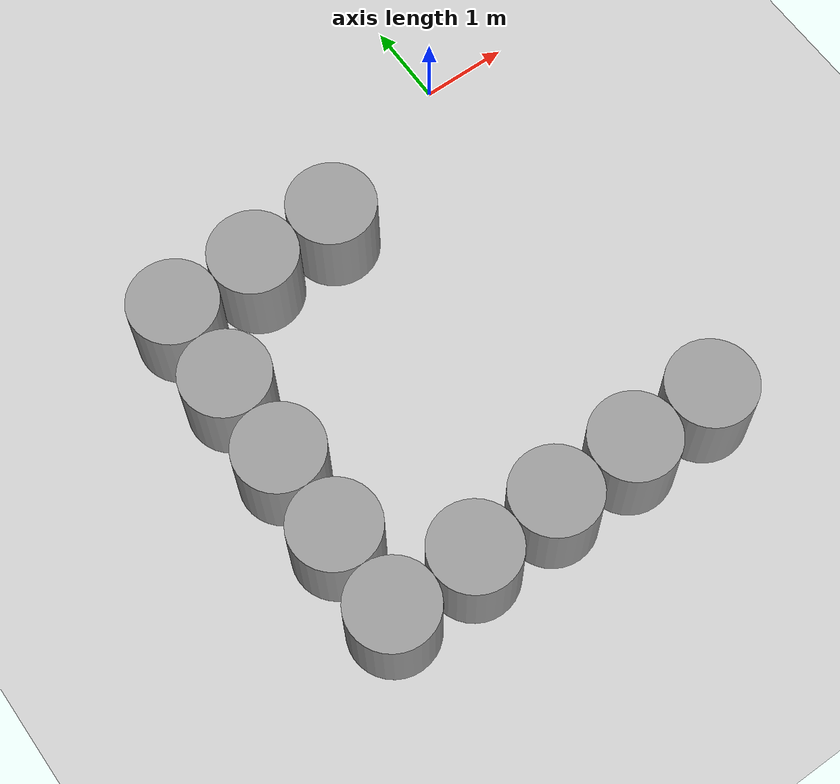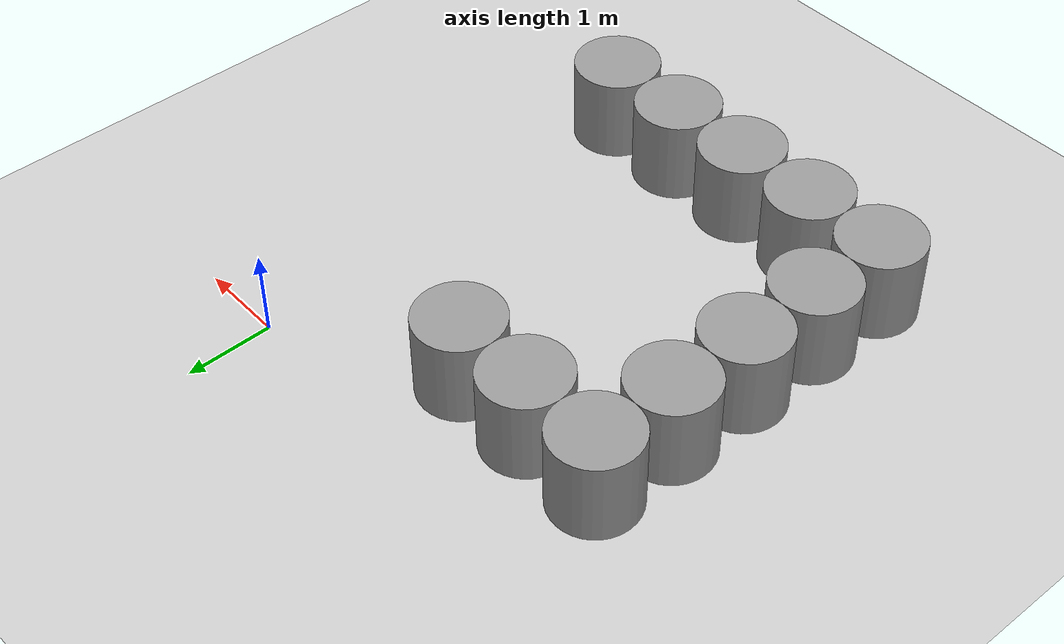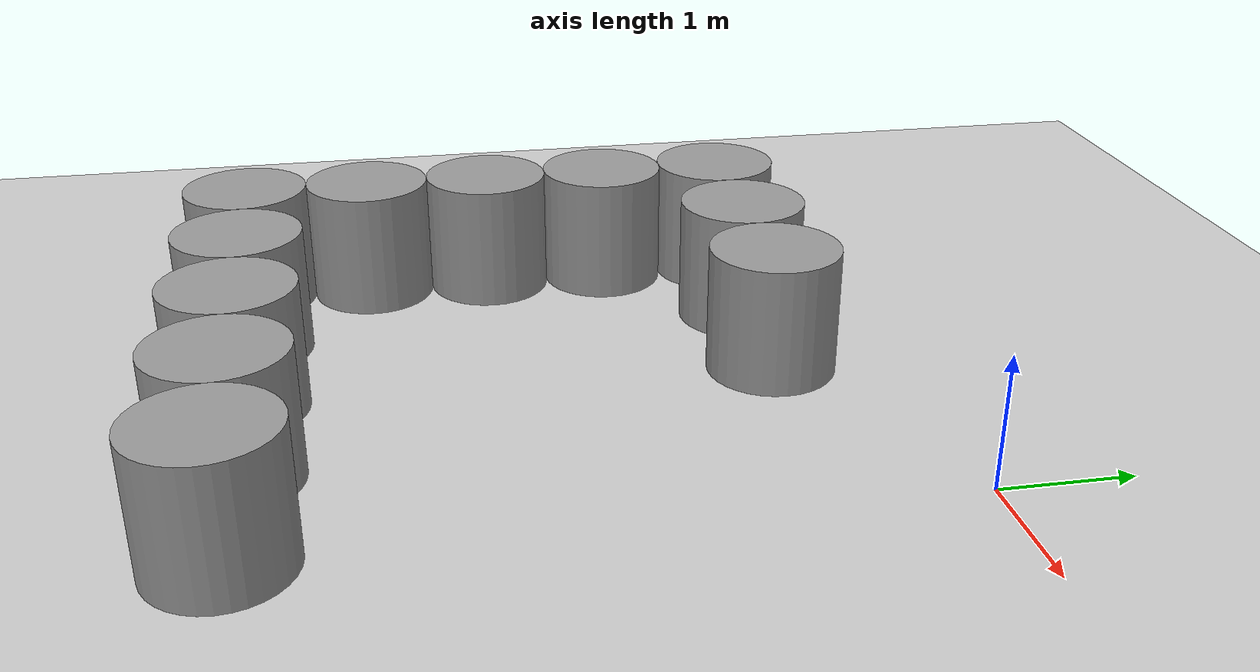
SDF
<sdf version="1.7">
 <world name="default">
  <model name="ground_plane">
   <static>1</static>
   <link name="link">
    <collision name="collision">
     <geometry><plane><normal>0 0 1</normal><size>100 100</size></plane></geometry>
     <surface>
      <contact><collide_bitmask>65535</collide_bitmask></contact>
      <friction><ode><mu>100</mu><mu2>50</mu2></ode></friction>
     </surface>
    </collision>
    <visual name="visual">
     <cast_shadows>0</cast_shadows>
     <geometry><plane><normal>0 0 1</normal><size>100 100</size></plane></geometry>
     <material>
      <script><uri>file://media/materials/scripts/gazebo.material</uri><name>Gazebo/Grey</name></script>
     </material>
    </visual>
   </link>
  </model>
  <model name="cylinder_1m_3">
   <model name="cylinder_1m">
    <link name="link_0">
     <inertial>
      <mass>1</mass>
      <inertia>
       <ixx>0.166667</ixx>
       <ixy>0</ixy>
       <ixz>0</ixz>
       <iyy>0.166667</iyy>
       <iyz>0</iyz>
       <izz>0.166667</izz>
      </inertia>
     </inertial>
     <pose>0 0 -0 1.5708 -0 0</pose>
     <visual name="visual">
      <geometry>
       <mesh>
        <uri>/home/leesirius/workbench_ws/src/tb3_custom_worlds/custom_models/cylinder_1m.obj</uri>
        <scale>1 1 1</scale>
       </mesh>
      </geometry>
      <material>
       <lighting>1</lighting>
       <script><uri>file://media/materials/scripts/gazebo.material</uri><name>Gazebo/Grey</name></script>
       <shader type="pixel"/>
      </material>
     </visual>
     <collision name="collision">
      <geometry>
       <mesh>
        <uri>/home/leesirius/workbench_ws/src/tb3_custom_worlds/custom_models/cylinder_1m.obj</uri>
        <scale>1 1 1</scale>
       </mesh>
      </geometry>
      <surface>
       <friction>
        <ode><mu>1</mu><mu2>1</mu2><fdir1>0 0 0</fdir1><slip1>0</slip1><slip2>0</slip2></ode>
        <torsional>
         <coefficient>1</coefficient>
         <patch_radius>0</patch_radius>
         <surface_radius>0</surface_radius>
         <use_patch_radius>1</use_patch_radius>
         <ode><slip>0</slip></ode>
        </torsional>
       </friction>
       <bounce><restitution_coefficient>0</restitution_coefficient><threshold>1e+06</threshold></bounce>
       <contact>
        <collide_without_contact>0</collide_without_contact>
        <collide_without_contact_bitmask>1</collide_without_contact_bitmask>
        <collide_bitmask>1</collide_bitmask>
        <ode>
         <soft_cfm>0</soft_cfm>
         <soft_erp>0.2</soft_erp>
         <kp>1e+13</kp>
         <kd>1</kd>
         <max_vel>0.01</max_vel>
         <min_depth>0</min_depth>
        </ode>
        <bullet>
         <split_impulse>1</split_impulse>
         <split_impulse_penetration_threshold>-0.01</split_impulse_penetration_threshold>
         <soft_cfm>0</soft_cfm>
         <soft_erp>0.2</soft_erp>
         <kp>1e+13</kp>
         <kd>1</kd>
        </bullet>
       </contact>
      </surface>
     </collision>
    </link>
    <static>0</static>
    <pose>0 0 4e-06 0 -0 0</pose>
   </model>
   <static>1</static>
   <pose>-3.99995 -1.00002 0.499996 -4e-06 -0 0.00014</pose>
  </model>
  <model name="cylinder_1m_4">
   <model name="cylinder_1m">
    <link name="link_0">
     <inertial>
      <mass>1</mass>
      <inertia>
       <ixx>0.166667</ixx>
       <ixy>0</ixy>
       <ixz>0</ixz>
       <iyy>0.166667</iyy>
       <iyz>0</iyz>
       <izz>0.166667</izz>
      </inertia>
     </inertial>
     <pose>0 0 -0 1.5708 -0 0</pose>
     <visual name="visual">
      <geometry>
       <mesh>
        <uri>/home/leesirius/workbench_ws/src/tb3_custom_worlds/custom_models/cylinder_1m.obj</uri>
        <scale>1 1 1</scale>
       </mesh>
      </geometry>
      <material>
       <lighting>1</lighting>
       <script><uri>file://media/materials/scripts/gazebo.material</uri><name>Gazebo/Grey</name></script>
       <shader type="pixel"/>
      </material>
     </visual>
     <collision name="collision">
      <geometry>
       <mesh>
        <uri>/home/leesirius/workbench_ws/src/tb3_custom_worlds/custom_models/cylinder_1m.obj</uri>
        <scale>1 1 1</scale>
       </mesh>
      </geometry>
      <surface>
       <friction>
        <ode><mu>1</mu><mu2>1</mu2><fdir1>0 0 0</fdir1><slip1>0</slip1><slip2>0</slip2></ode>
        <torsional>
         <coefficient>1</coefficient>
         <patch_radius>0</patch_radius>
         <surface_radius>0</surface_radius>
         <use_patch_radius>1</use_patch_radius>
         <ode><slip>0</slip></ode>
        </torsional>
       </friction>
       <bounce><restitution_coefficient>0</restitution_coefficient><threshold>1e+06</threshold></bounce>
       <contact>
        <collide_without_contact>0</collide_without_contact>
        <collide_without_contact_bitmask>1</collide_without_contact_bitmask>
        <collide_bitmask>1</collide_bitmask>
        <ode>
         <soft_cfm>0</soft_cfm>
         <soft_erp>0.2</soft_erp>
         <kp>1e+13</kp>
         <kd>1</kd>
         <max_vel>0.01</max_vel>
         <min_depth>0</min_depth>
        </ode>
        <bullet>
         <split_impulse>1</split_impulse>
         <split_impulse_penetration_threshold>-0.01</split_impulse_penetration_threshold>
         <soft_cfm>0</soft_cfm>
         <soft_erp>0.2</soft_erp>
         <kp>1e+13</kp>
         <kd>1</kd>
        </bullet>
       </contact>
      </surface>
     </collision>
    </link>
    <static>0</static>
    <pose>0 0 4e-06 0 -0 0</pose>
   </model>
   <static>1</static>
   <pose>-3.99995 -2.00002 0.499996 -4e-06 -0 0.00014</pose>
  </model>
  <model name="cylinder_1m_5">
   <model name="cylinder_1m">
    <link name="link_0">
     <inertial>
      <mass>1</mass>
      <inertia>
       <ixx>0.166667</ixx>
       <ixy>0</ixy>
       <ixz>0</ixz>
       <iyy>0.166667</iyy>
       <iyz>0</iyz>
       <izz>0.166667</izz>
      </inertia>
     </inertial>
     <pose>0 0 -0 1.5708 -0 0</pose>
     <visual name="visual">
      <geometry>
       <mesh>
        <uri>/home/leesirius/workbench_ws/src/tb3_custom_worlds/custom_models/cylinder_1m.obj</uri>
        <scale>1 1 1</scale>
       </mesh>
      </geometry>
      <material>
       <lighting>1</lighting>
       <script><uri>file://media/materials/scripts/gazebo.material</uri><name>Gazebo/Grey</name></script>
       <shader type="pixel"/>
      </material>
     </visual>
     <collision name="collision">
      <geometry>
       <mesh>
        <uri>/home/leesirius/workbench_ws/src/tb3_custom_worlds/custom_models/cylinder_1m.obj</uri>
        <scale>1 1 1</scale>
       </mesh>
      </geometry>
      <surface>
       <friction>
        <ode><mu>1</mu><mu2>1</mu2><fdir1>0 0 0</fdir1><slip1>0</slip1><slip2>0</slip2></ode>
        <torsional>
         <coefficient>1</coefficient>
         <patch_radius>0</patch_radius>
         <surface_radius>0</surface_radius>
         <use_patch_radius>1</use_patch_radius>
         <ode><slip>0</slip></ode>
        </torsional>
       </friction>
       <bounce><restitution_coefficient>0</restitution_coefficient><threshold>1e+06</threshold></bounce>
       <contact>
        <collide_without_contact>0</collide_without_contact>
        <collide_without_contact_bitmask>1</collide_without_contact_bitmask>
        <collide_bitmask>1</collide_bitmask>
        <ode>
         <soft_cfm>0</soft_cfm>
         <soft_erp>0.2</soft_erp>
         <kp>1e+13</kp>
         <kd>1</kd>
         <max_vel>0.01</max_vel>
         <min_depth>0</min_depth>
        </ode>
        <bullet>
         <split_impulse>1</split_impulse>
         <split_impulse_penetration_threshold>-0.01</split_impulse_penetration_threshold>
         <soft_cfm>0</soft_cfm>
         <soft_erp>0.2</soft_erp>
         <kp>1e+13</kp>
         <kd>1</kd>
        </bullet>
       </contact>
      </surface>
     </collision>
    </link>
    <static>0</static>
    <pose>0 0 4e-06 0 -0 0</pose>
   </model>
   <static>1</static>
   <pose>-3.99995 -3.00002 0.499996 -4e-06 -0 0.00014</pose>
  </model>
  <model name="cylinder_1m_6">
   <model name="cylinder_1m">
    <link name="link_0">
     <inertial>
      <mass>1</mass>
      <inertia>
       <ixx>0.166667</ixx>
       <ixy>0</ixy>
       <ixz>0</ixz>
       <iyy>0.166667</iyy>
       <iyz>0</iyz>
       <izz>0.166667</izz>
      </inertia>
     </inertial>
     <pose>0 0 -0 1.5708 -0 0</pose>
     <visual name="visual">
      <geometry>
       <mesh>
        <uri>/home/leesirius/workbench_ws/src/tb3_custom_worlds/custom_models/cylinder_1m.obj</uri>
        <scale>1 1 1</scale>
       </mesh>
      </geometry>
      <material>
       <lighting>1</lighting>
       <script><uri>file://media/materials/scripts/gazebo.material</uri><name>Gazebo/Grey</name></script>
       <shader type="pixel"/>
      </material>
     </visual>
     <collision name="collision">
      <geometry>
       <mesh>
        <uri>/home/leesirius/workbench_ws/src/tb3_custom_worlds/custom_models/cylinder_1m.obj</uri>
        <scale>1 1 1</scale>
       </mesh>
      </geometry>
      <surface>
       <friction>
        <ode><mu>1</mu><mu2>1</mu2><fdir1>0 0 0</fdir1><slip1>0</slip1><slip2>0</slip2></ode>
        <torsional>
         <coefficient>1</coefficient>
         <patch_radius>0</patch_radius>
         <surface_radius>0</surface_radius>
         <use_patch_radius>1</use_patch_radius>
         <ode><slip>0</slip></ode>
        </torsional>
       </friction>
       <bounce><restitution_coefficient>0</restitution_coefficient><threshold>1e+06</threshold></bounce>
       <contact>
        <collide_without_contact>0</collide_without_contact>
        <collide_without_contact_bitmask>1</collide_without_contact_bitmask>
        <collide_bitmask>1</collide_bitmask>
        <ode>
         <soft_cfm>0</soft_cfm>
         <soft_erp>0.2</soft_erp>
         <kp>1e+13</kp>
         <kd>1</kd>
         <max_vel>0.01</max_vel>
         <min_depth>0</min_depth>
        </ode>
        <bullet>
         <split_impulse>1</split_impulse>
         <split_impulse_penetration_threshold>-0.01</split_impulse_penetration_threshold>
         <soft_cfm>0</soft_cfm>
         <soft_erp>0.2</soft_erp>
         <kp>1e+13</kp>
         <kd>1</kd>
        </bullet>
       </contact>
      </surface>
     </collision>
    </link>
    <static>0</static>
    <pose>0 0 4e-06 0 -0 0</pose>
   </model>
   <static>1</static>
   <pose>-3.99995 -4.00002 0.499996 -4e-06 -0 0.00014</pose>
  </model>
  <model name="cylinder_1m_7">
   <model name="cylinder_1m">
    <link name="link_0">
     <inertial>
      <mass>1</mass>
      <inertia>
       <ixx>0.166667</ixx>
       <ixy>0</ixy>
       <ixz>0</ixz>
       <iyy>0.166667</iyy>
       <iyz>0</iyz>
       <izz>0.166667</izz>
      </inertia>
     </inertial>
     <pose>0 0 -0 1.5708 -0 0</pose>
     <visual name="visual">
      <geometry>
       <mesh>
        <uri>/home/leesirius/workbench_ws/src/tb3_custom_worlds/custom_models/cylinder_1m.obj</uri>
        <scale>1 1 1</scale>
       </mesh>
      </geometry>
      <material>
       <lighting>1</lighting>
       <script><uri>file://media/materials/scripts/gazebo.material</uri><name>Gazebo/Grey</name></script>
       <shader type="pixel"/>
      </material>
     </visual>
     <collision name="collision">
      <geometry>
       <mesh>
        <uri>/home/leesirius/workbench_ws/src/tb3_custom_worlds/custom_models/cylinder_1m.obj</uri>
        <scale>1 1 1</scale>
       </mesh>
      </geometry>
      <surface>
       <friction>
        <ode><mu>1</mu><mu2>1</mu2><fdir1>0 0 0</fdir1><slip1>0</slip1><slip2>0</slip2></ode>
        <torsional>
         <coefficient>1</coefficient>
         <patch_radius>0</patch_radius>
         <surface_radius>0</surface_radius>
         <use_patch_radius>1</use_patch_radius>
         <ode><slip>0</slip></ode>
        </torsional>
       </friction>
       <bounce><restitution_coefficient>0</restitution_coefficient><threshold>1e+06</threshold></bounce>
       <contact>
        <collide_without_contact>0</collide_without_contact>
        <collide_without_contact_bitmask>1</collide_without_contact_bitmask>
        <collide_bitmask>1</collide_bitmask>
        <ode>
         <soft_cfm>0</soft_cfm>
         <soft_erp>0.2</soft_erp>
         <kp>1e+13</kp>
         <kd>1</kd>
         <max_vel>0.01</max_vel>
         <min_depth>0</min_depth>
        </ode>
        <bullet>
         <split_impulse>1</split_impulse>
         <split_impulse_penetration_threshold>-0.01</split_impulse_penetration_threshold>
         <soft_cfm>0</soft_cfm>
         <soft_erp>0.2</soft_erp>
         <kp>1e+13</kp>
         <kd>1</kd>
        </bullet>
       </contact>
      </surface>
     </collision>
    </link>
    <static>0</static>
    <pose>0 0 4e-06 0 -0 0</pose>
   </model>
   <static>1</static>
   <pose>-3.99995 -5.00002 0.499996 -4e-06 -0 0.00014</pose>
  </model>
  <model name="cylinder_1m_2_clone_10">
   <model name="cylinder_1m">
    <link name="link_0">
     <inertial>
      <mass>1</mass>
      <inertia>
       <ixx>0.166667</ixx>
       <ixy>0</ixy>
       <ixz>0</ixz>
       <iyy>0.166667</iyy>
       <iyz>0</iyz>
       <izz>0.166667</izz>
      </inertia>
     </inertial>
     <pose>0 0 -0 1.5708 -0 0</pose>
     <visual name="visual">
      <geometry>
       <mesh>
        <uri>/home/leesirius/workbench_ws/src/tb3_custom_worlds/custom_models/cylinder_1m.obj</uri>
        <scale>1 1 1</scale>
       </mesh>
      </geometry>
      <material>
       <lighting>1</lighting>
       <script><uri>file://media/materials/scripts/gazebo.material</uri><name>Gazebo/Grey</name></script>
       <shader type="pixel"/>
      </material>
     </visual>
     <collision name="collision">
      <geometry>
       <mesh>
        <uri>/home/leesirius/workbench_ws/src/tb3_custom_worlds/custom_models/cylinder_1m.obj</uri>
        <scale>1 1 1</scale>
       </mesh>
      </geometry>
      <surface>
       <friction>
        <ode><mu>1</mu><mu2>1</mu2><fdir1>0 0 0</fdir1><slip1>0</slip1><slip2>0</slip2></ode>
        <torsional>
         <coefficient>1</coefficient>
         <patch_radius>0</patch_radius>
         <surface_radius>0</surface_radius>
         <use_patch_radius>1</use_patch_radius>
         <ode><slip>0</slip></ode>
        </torsional>
       </friction>
       <bounce><restitution_coefficient>0</restitution_coefficient><threshold>1e+06</threshold></bounce>
       <contact>
        <collide_without_contact>0</collide_without_contact>
        <collide_without_contact_bitmask>1</collide_without_contact_bitmask>
        <collide_bitmask>1</collide_bitmask>
        <ode>
         <soft_cfm>0</soft_cfm>
         <soft_erp>0.2</soft_erp>
         <kp>1e+13</kp>
         <kd>1</kd>
         <max_vel>0.01</max_vel>
         <min_depth>0</min_depth>
        </ode>
        <bullet>
         <split_impulse>1</split_impulse>
         <split_impulse_penetration_threshold>-0.01</split_impulse_penetration_threshold>
         <soft_cfm>0</soft_cfm>
         <soft_erp>0.2</soft_erp>
         <kp>1e+13</kp>
         <kd>1</kd>
        </bullet>
       </contact>
      </surface>
     </collision>
    </link>
    <static>0</static>
    <pose>0 0 4e-06 0 -0 0</pose>
   </model>
   <static>1</static>
   <pose>-2.99996 -5.00002 0.499995 -1e-06 -1e-06 0.000171</pose>
  </model>
  <model name="cylinder_1m_2_clone_11">
   <model name="cylinder_1m">
    <link name="link_0">
     <inertial>
      <mass>1</mass>
      <inertia>
       <ixx>0.166667</ixx>
       <ixy>0</ixy>
       <ixz>0</ixz>
       <iyy>0.166667</iyy>
       <iyz>0</iyz>
       <izz>0.166667</izz>
      </inertia>
     </inertial>
     <pose>0 0 -0 1.5708 -0 0</pose>
     <visual name="visual">
      <geometry>
       <mesh>
        <uri>/home/leesirius/workbench_ws/src/tb3_custom_worlds/custom_models/cylinder_1m.obj</uri>
        <scale>1 1 1</scale>
       </mesh>
      </geometry>
      <material>
       <lighting>1</lighting>
       <script><uri>file://media/materials/scripts/gazebo.material</uri><name>Gazebo/Grey</name></script>
       <shader type="pixel"/>
      </material>
     </visual>
     <collision name="collision">
      <geometry>
       <mesh>
        <uri>/home/leesirius/workbench_ws/src/tb3_custom_worlds/custom_models/cylinder_1m.obj</uri>
        <scale>1 1 1</scale>
       </mesh>
      </geometry>
      <surface>
       <friction>
        <ode><mu>1</mu><mu2>1</mu2><fdir1>0 0 0</fdir1><slip1>0</slip1><slip2>0</slip2></ode>
        <torsional>
         <coefficient>1</coefficient>
         <patch_radius>0</patch_radius>
         <surface_radius>0</surface_radius>
         <use_patch_radius>1</use_patch_radius>
         <ode><slip>0</slip></ode>
        </torsional>
       </friction>
       <bounce><restitution_coefficient>0</restitution_coefficient><threshold>1e+06</threshold></bounce>
       <contact>
        <collide_without_contact>0</collide_without_contact>
        <collide_without_contact_bitmask>1</collide_without_contact_bitmask>
        <collide_bitmask>1</collide_bitmask>
        <ode>
         <soft_cfm>0</soft_cfm>
         <soft_erp>0.2</soft_erp>
         <kp>1e+13</kp>
         <kd>1</kd>
         <max_vel>0.01</max_vel>
         <min_depth>0</min_depth>
        </ode>
        <bullet>
         <split_impulse>1</split_impulse>
         <split_impulse_penetration_threshold>-0.01</split_impulse_penetration_threshold>
         <soft_cfm>0</soft_cfm>
         <soft_erp>0.2</soft_erp>
         <kp>1e+13</kp>
         <kd>1</kd>
        </bullet>
       </contact>
      </surface>
     </collision>
    </link>
    <static>0</static>
    <pose>0 0 4e-06 0 -0 0</pose>
   </model>
   <static>1</static>
   <pose>-1.99996 -5.00002 0.499995 -1e-06 -1e-06 0.000171</pose>
  </model>
  <model name="cylinder_1m_2_clone_12">
   <model name="cylinder_1m">
    <link name="link_0">
     <inertial>
      <mass>1</mass>
      <inertia>
       <ixx>0.166667</ixx>
       <ixy>0</ixy>
       <ixz>0</ixz>
       <iyy>0.166667</iyy>
       <iyz>0</iyz>
       <izz>0.166667</izz>
      </inertia>
     </inertial>
     <pose>0 0 -0 1.5708 -0 0</pose>
     <visual name="visual">
      <geometry>
       <mesh>
        <uri>/home/leesirius/workbench_ws/src/tb3_custom_worlds/custom_models/cylinder_1m.obj</uri>
        <scale>1 1 1</scale>
       </mesh>
      </geometry>
      <material>
       <lighting>1</lighting>
       <script><uri>file://media/materials/scripts/gazebo.material</uri><name>Gazebo/Grey</name></script>
       <shader type="pixel"/>
      </material>
     </visual>
     <collision name="collision">
      <geometry>
       <mesh>
        <uri>/home/leesirius/workbench_ws/src/tb3_custom_worlds/custom_models/cylinder_1m.obj</uri>
        <scale>1 1 1</scale>
       </mesh>
      </geometry>
      <surface>
       <friction>
        <ode><mu>1</mu><mu2>1</mu2><fdir1>0 0 0</fdir1><slip1>0</slip1><slip2>0</slip2></ode>
        <torsional>
         <coefficient>1</coefficient>
         <patch_radius>0</patch_radius>
         <surface_radius>0</surface_radius>
         <use_patch_radius>1</use_patch_radius>
         <ode><slip>0</slip></ode>
        </torsional>
       </friction>
       <bounce><restitution_coefficient>0</restitution_coefficient><threshold>1e+06</threshold></bounce>
       <contact>
        <collide_without_contact>0</collide_without_contact>
        <collide_without_contact_bitmask>1</collide_without_contact_bitmask>
        <collide_bitmask>1</collide_bitmask>
        <ode>
         <soft_cfm>0</soft_cfm>
         <soft_erp>0.2</soft_erp>
         <kp>1e+13</kp>
         <kd>1</kd>
         <max_vel>0.01</max_vel>
         <min_depth>0</min_depth>
        </ode>
        <bullet>
         <split_impulse>1</split_impulse>
         <split_impulse_penetration_threshold>-0.01</split_impulse_penetration_threshold>
         <soft_cfm>0</soft_cfm>
         <soft_erp>0.2</soft_erp>
         <kp>1e+13</kp>
         <kd>1</kd>
        </bullet>
       </contact>
      </surface>
     </collision>
    </link>
    <static>0</static>
    <pose>0 0 4e-06 0 -0 0</pose>
   </model>
   <static>1</static>
   <pose>-0.999953 -5.00002 0.499995 -1e-06 -1e-06 0.000171</pose>
  </model>
  <model name="cylinder_1m_2_clone_13">
   <model name="cylinder_1m">
    <link name="link_0">
     <inertial>
      <mass>1</mass>
      <inertia>
       <ixx>0.166667</ixx>
       <ixy>0</ixy>
       <ixz>0</ixz>
       <iyy>0.166667</iyy>
       <iyz>0</iyz>
       <izz>0.166667</izz>
      </inertia>
     </inertial>
     <pose>0 0 -0 1.5708 -0 0</pose>
     <visual name="visual">
      <geometry>
       <mesh>
        <uri>/home/leesirius/workbench_ws/src/tb3_custom_worlds/custom_models/cylinder_1m.obj</uri>
        <scale>1 1 1</scale>
       </mesh>
      </geometry>
      <material>
       <lighting>1</lighting>
       <script><uri>file://media/materials/scripts/gazebo.material</uri><name>Gazebo/Grey</name></script>
       <shader type="pixel"/>
      </material>
     </visual>
     <collision name="collision">
      <geometry>
       <mesh>
        <uri>/home/leesirius/workbench_ws/src/tb3_custom_worlds/custom_models/cylinder_1m.obj</uri>
        <scale>1 1 1</scale>
       </mesh>
      </geometry>
      <surface>
       <friction>
        <ode><mu>1</mu><mu2>1</mu2><fdir1>0 0 0</fdir1><slip1>0</slip1><slip2>0</slip2></ode>
        <torsional>
         <coefficient>1</coefficient>
         <patch_radius>0</patch_radius>
         <surface_radius>0</surface_radius>
         <use_patch_radius>1</use_patch_radius>
         <ode><slip>0</slip></ode>
        </torsional>
       </friction>
       <bounce><restitution_coefficient>0</restitution_coefficient><threshold>1e+06</threshold></bounce>
       <contact>
        <collide_without_contact>0</collide_without_contact>
        <collide_without_contact_bitmask>1</collide_without_contact_bitmask>
        <collide_bitmask>1</collide_bitmask>
        <ode>
         <soft_cfm>0</soft_cfm>
         <soft_erp>0.2</soft_erp>
         <kp>1e+13</kp>
         <kd>1</kd>
         <max_vel>0.01</max_vel>
         <min_depth>0</min_depth>
        </ode>
        <bullet>
         <split_impulse>1</split_impulse>
         <split_impulse_penetration_threshold>-0.01</split_impulse_penetration_threshold>
         <soft_cfm>0</soft_cfm>
         <soft_erp>0.2</soft_erp>
         <kp>1e+13</kp>
         <kd>1</kd>
        </bullet>
       </contact>
      </surface>
     </collision>
    </link>
    <static>0</static>
    <pose>0 0 4e-06 0 -0 0</pose>
   </model>
   <static>1</static>
   <pose>3.9e-05 -5.00001 0.499995 -4e-06 -3e-06 0.00016</pose>
  </model>
  <model name="cylinder_1m_2_clone_46_clone_1">
   <model name="cylinder_1m">
    <link name="link_0">
     <inertial>
      <mass>1</mass>
      <inertia>
       <ixx>0.166667</ixx>
       <ixy>0</ixy>
       <ixz>0</ixz>
       <iyy>0.166667</iyy>
       <iyz>0</iyz>
       <izz>0.166667</izz>
      </inertia>
     </inertial>
     <pose>0 0 -0 1.5708 -0 0</pose>
     <visual name="visual">
      <geometry>
       <mesh>
        <uri>/home/leesirius/workbench_ws/src/tb3_custom_worlds/custom_models/cylinder_1m.obj</uri>
        <scale>1 1 1</scale>
       </mesh>
      </geometry>
      <material>
       <lighting>1</lighting>
       <script><uri>file://media/materials/scripts/gazebo.material</uri><name>Gazebo/Grey</name></script>
       <shader type="pixel"/>
      </material>
     </visual>
     <collision name="collision">
      <geometry>
       <mesh>
        <uri>/home/leesirius/workbench_ws/src/tb3_custom_worlds/custom_models/cylinder_1m.obj</uri>
        <scale>1 1 1</scale>
       </mesh>
      </geometry>
      <surface>
       <friction>
        <ode><mu>1</mu><mu2>1</mu2><fdir1>0 0 0</fdir1><slip1>0</slip1><slip2>0</slip2></ode>
        <torsional>
         <coefficient>1</coefficient>
         <patch_radius>0</patch_radius>
         <surface_radius>0</surface_radius>
         <use_patch_radius>1</use_patch_radius>
         <ode><slip>0</slip></ode>
        </torsional>
       </friction>
       <bounce><restitution_coefficient>0</restitution_coefficient><threshold>1e+06</threshold></bounce>
       <contact>
        <collide_without_contact>0</collide_without_contact>
        <collide_without_contact_bitmask>1</collide_without_contact_bitmask>
        <collide_bitmask>1</collide_bitmask>
        <ode>
         <soft_cfm>0</soft_cfm>
         <soft_erp>0.2</soft_erp>
         <kp>1e+13</kp>
         <kd>1</kd>
         <max_vel>0.01</max_vel>
         <min_depth>0</min_depth>
        </ode>
        <bullet>
         <split_impulse>1</split_impulse>
         <split_impulse_penetration_threshold>-0.01</split_impulse_penetration_threshold>
         <soft_cfm>0</soft_cfm>
         <soft_erp>0.2</soft_erp>
         <kp>1e+13</kp>
         <kd>1</kd>
        </bullet>
       </contact>
      </surface>
     </collision>
    </link>
    <static>0</static>
    <pose>0 0 4e-06 0 -0 0</pose>
   </model>
   <static>1</static>
   <pose>-2.99999 -1.00001 0.499993 -5e-06 -6e-06 0.0002</pose>
  </model>
  <model name="cylinder_1m_2_clone_46_clone_2">
   <model name="cylinder_1m">
    <link name="link_0">
     <inertial>
      <mass>1</mass>
      <inertia>
       <ixx>0.166667</ixx>
       <ixy>0</ixy>
       <ixz>0</ixz>
       <iyy>0.166667</iyy>
       <iyz>0</iyz>
       <izz>0.166667</izz>
      </inertia>
     </inertial>
     <pose>0 0 -0 1.5708 -0 0</pose>
     <visual name="visual">
      <geometry>
       <mesh>
        <uri>/home/leesirius/workbench_ws/src/tb3_custom_worlds/custom_models/cylinder_1m.obj</uri>
        <scale>1 1 1</scale>
       </mesh>
      </geometry>
      <material>
       <lighting>1</lighting>
       <script><uri>file://media/materials/scripts/gazebo.material</uri><name>Gazebo/Grey</name></script>
       <shader type="pixel"/>
      </material>
     </visual>
     <collision name="collision">
      <geometry>
       <mesh>
        <uri>/home/leesirius/workbench_ws/src/tb3_custom_worlds/custom_models/cylinder_1m.obj</uri>
        <scale>1 1 1</scale>
       </mesh>
      </geometry>
      <surface>
       <friction>
        <ode><mu>1</mu><mu2>1</mu2><fdir1>0 0 0</fdir1><slip1>0</slip1><slip2>0</slip2></ode>
        <torsional>
         <coefficient>1</coefficient>
         <patch_radius>0</patch_radius>
         <surface_radius>0</surface_radius>
         <use_patch_radius>1</use_patch_radius>
         <ode><slip>0</slip></ode>
        </torsional>
       </friction>
       <bounce><restitution_coefficient>0</restitution_coefficient><threshold>1e+06</threshold></bounce>
       <contact>
        <collide_without_contact>0</collide_without_contact>
        <collide_without_contact_bitmask>1</collide_without_contact_bitmask>
        <collide_bitmask>1</collide_bitmask>
        <ode>
         <soft_cfm>0</soft_cfm>
         <soft_erp>0.2</soft_erp>
         <kp>1e+13</kp>
         <kd>1</kd>
         <max_vel>0.01</max_vel>
         <min_depth>0</min_depth>
        </ode>
        <bullet>
         <split_impulse>1</split_impulse>
         <split_impulse_penetration_threshold>-0.01</split_impulse_penetration_threshold>
         <soft_cfm>0</soft_cfm>
         <soft_erp>0.2</soft_erp>
         <kp>1e+13</kp>
         <kd>1</kd>
        </bullet>
       </contact>
      </surface>
     </collision>
    </link>
    <static>0</static>
    <pose>0 0 4e-06 0 -0 0</pose>
   </model>
   <static>1</static>
   <pose>-2.00036 -1.00005 0.500006 -8e-06 2e-05 0.000244</pose>
  </model>
 </world>
</sdf>
